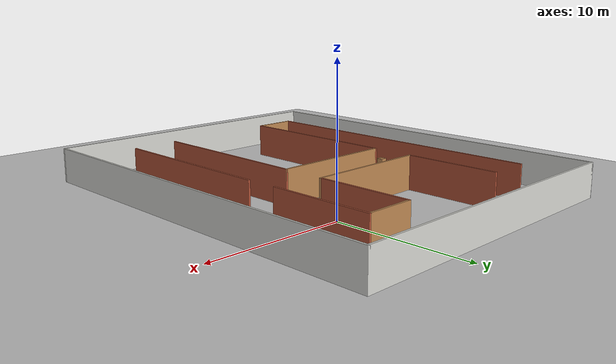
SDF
<sdf version='1.6'>
  <world name='default'>
    <model name='ground_plane'>
      <static>1</static>
      <link name='link'>
        <collision name='collision'>
          <geometry>
            <plane>
              <normal>0 0 1</normal>
              <size>100 100</size>
            </plane>
          </geometry>
          <surface>
            <friction>
              <ode>
                <mu>100</mu>
                <mu2>50</mu2>
              </ode>
              <torsional>
                <ode/>
              </torsional>
            </friction>
            <contact>
              <ode/>
            </contact>
            <bounce/>
          </surface>
          <max_contacts>10</max_contacts>
        </collision>
        <visual name='visual'>
          <cast_shadows>0</cast_shadows>
          <geometry>
            <plane>
              <normal>0 0 1</normal>
              <size>100 100</size>
            </plane>
          </geometry>
          <material>
            <script>
              <uri>file://media/materials/scripts/gazebo.material</uri>
              <name>Gazebo/Tertiary</name>
            </script>
          </material>
        </visual>
        <self_collide>0</self_collide>
        <enable_wind>0</enable_wind>
        <kinematic>0</kinematic>
      </link>
    </model>
    <light name='sun' type='directional'>
      <cast_shadows>1</cast_shadows>
      <pose frame=''>0 0 10 0 -0 0</pose>
      <diffuse>0.8 0.8 0.8 1</diffuse>
      <specular>0.2 0.2 0.2 1</specular>
      <attenuation>
        <range>1000</range>
        <constant>0.9</constant>
        <linear>0.01</linear>
        <quadratic>0.001</quadratic>
      </attenuation>
      <direction>-0.5 0.1 -0.9</direction>
    </light>
    <gravity>0 0 -9.8</gravity>
    <magnetic_field>6e-06 2.3e-05 -4.2e-05</magnetic_field>
    <atmosphere type='adiabatic'/>
    <physics name='default_physics' default='0' type='ode'>
      <max_step_size>0.001</max_step_size>
      <real_time_factor>1</real_time_factor>
      <real_time_update_rate>1000</real_time_update_rate>
    </physics>
    <scene>
      <ambient>0.4 0.4 0.4 1</ambient>
      <background>0.7 0.7 0.7 1</background>
      <shadows>1</shadows>
    </scene>
    <audio>
      <device>default</device>
    </audio>
    <wind/>
    <spherical_coordinates>
      <surface_model>EARTH_WGS84</surface_model>
      <latitude_deg>0</latitude_deg>
      <longitude_deg>0</longitude_deg>
      <elevation>0</elevation>
      <heading_deg>0</heading_deg>
    </spherical_coordinates>
    <gui fullscreen='0'>
      <camera name='user_camera'>
        <pose frame=''>-0.65607 -16.5561 27.0878 0 1.1178 1.88717</pose>
        <view_controller>orbit</view_controller>
        <projection_type>perspective</projection_type>
      </camera>
    </gui>
    <model name='H_shaped_course'>
      <pose frame=''>-4.38852 -5.95909 0 0 -0 0</pose>
      <link name='Wall_10'>
        <collision name='Wall_10_Collision'>
          <geometry>
            <box>
              <size>12.75 0.15 2.5</size>
            </box>
          </geometry>
          <pose frame=''>0 0 1.25 0 -0 0</pose>
          <max_contacts>10</max_contacts>
          <surface>
            <contact>
              <ode/>
            </contact>
            <bounce/>
            <friction>
              <torsional>
                <ode/>
              </torsional>
              <ode/>
            </friction>
          </surface>
        </collision>
        <visual name='Wall_10_Visual'>
          <pose frame=''>0 0 1.25 0 -0 0</pose>
          <geometry>
            <box>
              <size>12.75 0.15 2.5</size>
            </box>
          </geometry>
          <material>
            <script>
              <uri>file://media/materials/scripts/gazebo.material</uri>
              <name>Gazebo/Bricks</name>
            </script>
            <ambient>1 1 1 1</ambient>
          </material>
          <meta>
            <layer>0</layer>
          </meta>
        </visual>
        <pose frame=''>-4.52948 -4.89593 0 0 -0 1.5708</pose>
        <self_collide>0</self_collide>
        <enable_wind>0</enable_wind>
        <kinematic>0</kinematic>
      </link>
      <link name='Wall_11'>
        <collision name='Wall_11_Collision'>
          <geometry>
            <box>
              <size>9 0.15 2.5</size>
            </box>
          </geometry>
          <pose frame=''>0 0 1.25 0 -0 0</pose>
          <max_contacts>10</max_contacts>
          <surface>
            <contact>
              <ode/>
            </contact>
            <bounce/>
            <friction>
              <torsional>
                <ode/>
              </torsional>
              <ode/>
            </friction>
          </surface>
        </collision>
        <visual name='Wall_11_Visual'>
          <pose frame=''>0 0 1.25 0 -0 0</pose>
          <geometry>
            <box>
              <size>9 0.15 2.5</size>
            </box>
          </geometry>
          <material>
            <script>
              <uri>file://media/materials/scripts/gazebo.material</uri>
              <name>Gazebo/Wood</name>
            </script>
            <ambient>1 1 1 1</ambient>
          </material>
          <meta>
            <layer>0</layer>
          </meta>
        </visual>
        <pose frame=''>-0.104482 1.40407 0 0 -0 0</pose>
        <self_collide>0</self_collide>
        <enable_wind>0</enable_wind>
        <kinematic>0</kinematic>
      </link>
      <link name='Wall_12'>
        <collision name='Wall_12_Collision'>
          <geometry>
            <box>
              <size>12.5 0.15 2.5</size>
            </box>
          </geometry>
          <pose frame=''>0 0 1.25 0 -0 0</pose>
          <max_contacts>10</max_contacts>
          <surface>
            <contact>
              <ode/>
            </contact>
            <bounce/>
            <friction>
              <torsional>
                <ode/>
              </torsional>
              <ode/>
            </friction>
          </surface>
        </collision>
        <visual name='Wall_12_Visual'>
          <pose frame=''>0 0 1.25 0 -0 0</pose>
          <geometry>
            <box>
              <size>12.5 0.15 2.5</size>
            </box>
          </geometry>
          <material>
            <script>
              <uri>file://media/materials/scripts/gazebo.material</uri>
              <name>Gazebo/Bricks</name>
            </script>
            <ambient>1 1 1 1</ambient>
          </material>
          <meta>
            <layer>0</layer>
          </meta>
        </visual>
        <pose frame=''>4.32052 -4.77093 0 0 -0 -1.5708</pose>
        <self_collide>0</self_collide>
        <enable_wind>0</enable_wind>
        <kinematic>0</kinematic>
      </link>
      <link name='Wall_17'>
        <collision name='Wall_17_Collision'>
          <geometry>
            <box>
              <size>23 0.15 2.5</size>
            </box>
          </geometry>
          <pose frame=''>0 0 1.25 0 -0 0</pose>
          <max_contacts>10</max_contacts>
          <surface>
            <contact>
              <ode/>
            </contact>
            <bounce/>
            <friction>
              <torsional>
                <ode/>
              </torsional>
              <ode/>
            </friction>
          </surface>
        </collision>
        <visual name='Wall_17_Visual'>
          <pose frame=''>0 0 1.25 0 -0 0</pose>
          <geometry>
            <box>
              <size>23 0.15 2.5</size>
            </box>
          </geometry>
          <material>
            <script>
              <uri>file://media/materials/scripts/gazebo.material</uri>
              <name>Gazebo/CeilingTiled</name>
            </script>
            <ambient>1 1 1 1</ambient>
          </material>
          <meta>
            <layer>0</layer>
          </meta>
        </visual>
        <pose frame=''>-0 14.55 0 0 -0 0</pose>
        <self_collide>0</self_collide>
        <enable_wind>0</enable_wind>
        <kinematic>0</kinematic>
      </link>
      <link name='Wall_18'>
        <collision name='Wall_18_Collision'>
          <geometry>
            <box>
              <size>29.25 0.15 2.5</size>
            </box>
          </geometry>
          <pose frame=''>0 0 1.25 0 -0 0</pose>
          <max_contacts>10</max_contacts>
          <surface>
            <contact>
              <ode/>
            </contact>
            <bounce/>
            <friction>
              <torsional>
                <ode/>
              </torsional>
              <ode/>
            </friction>
          </surface>
        </collision>
        <visual name='Wall_18_Visual'>
          <pose frame=''>0 0 1.25 0 -0 0</pose>
          <geometry>
            <box>
              <size>29.25 0.15 2.5</size>
            </box>
          </geometry>
          <material>
            <script>
              <uri>file://media/materials/scripts/gazebo.material</uri>
              <name>Gazebo/CeilingTiled</name>
            </script>
            <ambient>1 1 1 1</ambient>
          </material>
          <meta>
            <layer>0</layer>
          </meta>
        </visual>
        <pose frame=''>11.425 0 0 0 -0 -1.5708</pose>
        <self_collide>0</self_collide>
        <enable_wind>0</enable_wind>
        <kinematic>0</kinematic>
      </link>
      <link name='Wall_19'>
        <collision name='Wall_19_Collision'>
          <geometry>
            <box>
              <size>23 0.15 2.5</size>
            </box>
          </geometry>
          <pose frame=''>0 0 1.25 0 -0 0</pose>
          <max_contacts>10</max_contacts>
          <surface>
            <contact>
              <ode/>
            </contact>
            <bounce/>
            <friction>
              <torsional>
                <ode/>
              </torsional>
              <ode/>
            </friction>
          </surface>
        </collision>
        <visual name='Wall_19_Visual'>
          <pose frame=''>0 0 1.25 0 -0 0</pose>
          <geometry>
            <box>
              <size>23 0.15 2.5</size>
            </box>
          </geometry>
          <material>
            <script>
              <uri>file://media/materials/scripts/gazebo.material</uri>
              <name>Gazebo/CeilingTiled</name>
            </script>
            <ambient>1 1 1 1</ambient>
          </material>
          <meta>
            <layer>0</layer>
          </meta>
        </visual>
        <pose frame=''>-0 -14.55 0 0 -0 3.14159</pose>
        <self_collide>0</self_collide>
        <enable_wind>0</enable_wind>
        <kinematic>0</kinematic>
      </link>
      <link name='Wall_20'>
        <collision name='Wall_20_Collision'>
          <geometry>
            <box>
              <size>29.25 0.15 2.5</size>
            </box>
          </geometry>
          <pose frame=''>0 0 1.25 0 -0 0</pose>
          <max_contacts>10</max_contacts>
          <surface>
            <contact>
              <ode/>
            </contact>
            <bounce/>
            <friction>
              <torsional>
                <ode/>
              </torsional>
              <ode/>
            </friction>
          </surface>
        </collision>
        <visual name='Wall_20_Visual'>
          <pose frame=''>0 0 1.25 0 -0 0</pose>
          <geometry>
            <box>
              <size>29.25 0.15 2.5</size>
            </box>
          </geometry>
          <material>
            <script>
              <uri>file://media/materials/scripts/gazebo.material</uri>
              <name>Gazebo/CeilingTiled</name>
            </script>
            <ambient>1 1 1 1</ambient>
          </material>
          <meta>
            <layer>0</layer>
          </meta>
        </visual>
        <pose frame=''>-11.425 0 0 0 -0 1.5708</pose>
        <self_collide>0</self_collide>
        <enable_wind>0</enable_wind>
        <kinematic>0</kinematic>
      </link>
      <link name='Wall_22'>
        <collision name='Wall_22_Collision'>
          <geometry>
            <box>
              <size>7.5 0.15 2.5</size>
            </box>
          </geometry>
          <pose frame=''>0 0 1.25 0 -0 0</pose>
          <max_contacts>10</max_contacts>
          <surface>
            <contact>
              <ode/>
            </contact>
            <bounce/>
            <friction>
              <torsional>
                <ode/>
              </torsional>
              <ode/>
            </friction>
          </surface>
        </collision>
        <visual name='Wall_22_Visual'>
          <pose frame=''>0 0 1.25 0 -0 0</pose>
          <geometry>
            <box>
              <size>7.5 0.15 2.5</size>
            </box>
          </geometry>
          <material>
            <script>
              <uri>file://media/materials/scripts/gazebo.material</uri>
              <name>Gazebo/Bricks</name>
            </script>
            <ambient>1 1 1 1</ambient>
          </material>
          <meta>
            <layer>0</layer>
          </meta>
        </visual>
        <pose frame=''>7.71017 7.73708 0 0 -0 -1.5708</pose>
        <self_collide>0</self_collide>
        <enable_wind>0</enable_wind>
        <kinematic>0</kinematic>
      </link>
      <link name='Wall_24'>
        <collision name='Wall_24_Collision'>
          <geometry>
            <box>
              <size>12.75 0.15 2.5</size>
            </box>
          </geometry>
          <pose frame=''>0 0 1.25 0 -0 0</pose>
          <max_contacts>10</max_contacts>
          <surface>
            <contact>
              <ode/>
            </contact>
            <bounce/>
            <friction>
              <torsional>
                <ode/>
              </torsional>
              <ode/>
            </friction>
          </surface>
        </collision>
        <visual name='Wall_24_Visual'>
          <pose frame=''>0 0 1.25 0 -0 0</pose>
          <geometry>
            <box>
              <size>12.75 0.15 2.5</size>
            </box>
          </geometry>
          <material>
            <script>
              <uri>file://media/materials/scripts/gazebo.material</uri>
              <name>Gazebo/Bricks</name>
            </script>
            <ambient>1 1 1 1</ambient>
          </material>
          <meta>
            <layer>0</layer>
          </meta>
        </visual>
        <pose frame=''>7.7717 -4.56101 0 0 -0 1.5708</pose>
        <self_collide>0</self_collide>
        <enable_wind>0</enable_wind>
        <kinematic>0</kinematic>
      </link>
      <link name='Wall_3'>
        <collision name='Wall_3_Collision'>
          <geometry>
            <box>
              <size>3.5 0.15 2.5</size>
            </box>
          </geometry>
          <pose frame=''>0 0 1.25 0 -0 0</pose>
          <max_contacts>10</max_contacts>
          <surface>
            <contact>
              <ode/>
            </contact>
            <bounce/>
            <friction>
              <torsional>
                <ode/>
              </torsional>
              <ode/>
            </friction>
          </surface>
        </collision>
        <visual name='Wall_3_Visual'>
          <pose frame=''>0 0 1.25 0 -0 0</pose>
          <geometry>
            <box>
              <size>3.5 0.15 2.5</size>
            </box>
          </geometry>
          <material>
            <script>
              <uri>file://media/materials/scripts/gazebo.material</uri>
              <name>Gazebo/Wood</name>
            </script>
            <ambient>1 1 1 1</ambient>
          </material>
          <meta>
            <layer>0</layer>
          </meta>
        </visual>
        <pose frame=''>5.99552 11.4041 0 0 -0 3.14159</pose>
        <self_collide>0</self_collide>
        <enable_wind>0</enable_wind>
        <kinematic>0</kinematic>
      </link>
      <link name='Wall_4'>
        <collision name='Wall_4_Collision'>
          <geometry>
            <box>
              <size>7 0.15 2.5</size>
            </box>
          </geometry>
          <pose frame=''>0 0 1.25 0 -0 0</pose>
          <max_contacts>10</max_contacts>
          <surface>
            <contact>
              <ode/>
            </contact>
            <bounce/>
            <friction>
              <torsional>
                <ode/>
              </torsional>
              <ode/>
            </friction>
          </surface>
        </collision>
        <visual name='Wall_4_Visual'>
          <pose frame=''>0 0 1.25 0 -0 0</pose>
          <geometry>
            <box>
              <size>7 0.15 2.5</size>
            </box>
          </geometry>
          <material>
            <script>
              <uri>file://media/materials/scripts/gazebo.material</uri>
              <name>Gazebo/Bricks</name>
            </script>
            <ambient>1 1 1 1</ambient>
          </material>
          <meta>
            <layer>0</layer>
          </meta>
        </visual>
        <pose frame=''>4.32052 7.97907 0 0 -0 -1.5708</pose>
        <self_collide>0</self_collide>
        <enable_wind>0</enable_wind>
        <kinematic>0</kinematic>
      </link>
      <link name='Wall_5'>
        <collision name='Wall_5_Collision'>
          <geometry>
            <box>
              <size>9 0.15 2.5</size>
            </box>
          </geometry>
          <pose frame=''>0 0 1.25 0 -0 0</pose>
          <max_contacts>10</max_contacts>
          <surface>
            <contact>
              <ode/>
            </contact>
            <bounce/>
            <friction>
              <torsional>
                <ode/>
              </torsional>
              <ode/>
            </friction>
          </surface>
        </collision>
        <visual name='Wall_5_Visual'>
          <pose frame=''>0 0 1.25 0 -0 0</pose>
          <geometry>
            <box>
              <size>9 0.15 2.5</size>
            </box>
          </geometry>
          <material>
            <script>
              <uri>file://media/materials/scripts/gazebo.material</uri>
              <name>Gazebo/Wood</name>
            </script>
            <ambient>1 1 1 1</ambient>
          </material>
          <meta>
            <layer>0</layer>
          </meta>
        </visual>
        <pose frame=''>-0.104482 4.55407 0 0 -0 3.14159</pose>
        <self_collide>0</self_collide>
        <enable_wind>0</enable_wind>
        <kinematic>0</kinematic>
      </link>
      <link name='Wall_6'>
        <collision name='Wall_6_Collision'>
          <geometry>
            <box>
              <size>7 0.15 2.5</size>
            </box>
          </geometry>
          <pose frame=''>0 0 1.25 0 -0 0</pose>
          <max_contacts>10</max_contacts>
          <surface>
            <contact>
              <ode/>
            </contact>
            <bounce/>
            <friction>
              <torsional>
                <ode/>
              </torsional>
              <ode/>
            </friction>
          </surface>
        </collision>
        <visual name='Wall_6_Visual'>
          <pose frame=''>0 0 1.25 0 -0 0</pose>
          <geometry>
            <box>
              <size>7 0.15 2.5</size>
            </box>
          </geometry>
          <material>
            <script>
              <uri>file://media/materials/scripts/gazebo.material</uri>
              <name>Gazebo/Bricks</name>
            </script>
            <ambient>1 1 1 1</ambient>
          </material>
          <meta>
            <layer>0</layer>
          </meta>
        </visual>
        <pose frame=''>-4.52948 7.97907 0 0 -0 1.5708</pose>
        <self_collide>0</self_collide>
        <enable_wind>0</enable_wind>
        <kinematic>0</kinematic>
      </link>
      <link name='Wall_8'>
        <collision name='Wall_8_Collision'>
          <geometry>
            <box>
              <size>22.75 0.15 2.5</size>
            </box>
          </geometry>
          <pose frame=''>0 0 1.25 0 -0 0</pose>
          <max_contacts>10</max_contacts>
          <surface>
            <contact>
              <ode/>
            </contact>
            <bounce/>
            <friction>
              <torsional>
                <ode/>
              </torsional>
              <ode/>
            </friction>
          </surface>
        </collision>
        <visual name='Wall_8_Visual'>
          <pose frame=''>0 0 1.25 0 -0 0</pose>
          <geometry>
            <box>
              <size>22.75 0.15 2.5</size>
            </box>
          </geometry>
          <material>
            <script>
              <uri>file://media/materials/scripts/gazebo.material</uri>
              <name>Gazebo/Bricks</name>
            </script>
            <ambient>1 1 1 1</ambient>
          </material>
          <meta>
            <layer>0</layer>
          </meta>
        </visual>
        <pose frame=''>-7.62948 0.104067 0 0 -0 -1.5708</pose>
        <self_collide>0</self_collide>
        <enable_wind>0</enable_wind>
        <kinematic>0</kinematic>
      </link>
      <link name='Wall_9'>
        <collision name='Wall_9_Collision'>
          <geometry>
            <box>
              <size>3.25 0.15 2.5</size>
            </box>
          </geometry>
          <pose frame=''>0 0 1.25 0 -0 0</pose>
          <max_contacts>10</max_contacts>
          <surface>
            <contact>
              <ode/>
            </contact>
            <bounce/>
            <friction>
              <torsional>
                <ode/>
              </torsional>
              <ode/>
            </friction>
          </surface>
        </collision>
        <visual name='Wall_9_Visual'>
          <pose frame=''>0 0 1.25 0 -0 0</pose>
          <geometry>
            <box>
              <size>3.25 0.15 2.5</size>
            </box>
          </geometry>
          <material>
            <script>
              <uri>file://media/materials/scripts/gazebo.material</uri>
              <name>Gazebo/Wood</name>
            </script>
            <ambient>1 1 1 1</ambient>
          </material>
          <meta>
            <layer>0</layer>
          </meta>
        </visual>
        <pose frame=''>-6.07948 -11.1959 0 0 -0 0</pose>
        <self_collide>0</self_collide>
        <enable_wind>0</enable_wind>
        <kinematic>0</kinematic>
      </link>
      <static>1</static>
    </model>
    <model name='bookshelf'>
      <static>1</static>
      <link name='link'>
        <inertial>
          <mass>1</mass>
        </inertial>
        <collision name='back'>
          <pose frame=''>0 0.005 0.6 0 -0 0</pose>
          <geometry>
            <box>
              <size>0.9 0.01 1.2</size>
            </box>
          </geometry>
          <max_contacts>10</max_contacts>
          <surface>
            <contact>
              <ode/>
            </contact>
            <bounce/>
            <friction>
              <torsional>
                <ode/>
              </torsional>
              <ode/>
            </friction>
          </surface>
        </collision>
        <visual name='visual1'>
          <pose frame=''>0 0.005 0.6 0 -0 0</pose>
          <geometry>
            <box>
              <size>0.9 0.01 1.2</size>
            </box>
          </geometry>
          <material>
            <script>
              <uri>file://media/materials/scripts/gazebo.material</uri>
              <name>Gazebo/Wood</name>
            </script>
          </material>
        </visual>
        <collision name='left_side'>
          <pose frame=''>0.45 -0.195 0.6 0 -0 0</pose>
          <geometry>
            <box>
              <size>0.02 0.4 1.2</size>
            </box>
          </geometry>
          <max_contacts>10</max_contacts>
          <surface>
            <contact>
              <ode/>
            </contact>
            <bounce/>
            <friction>
              <torsional>
                <ode/>
              </torsional>
              <ode/>
            </friction>
          </surface>
        </collision>
        <visual name='visual2'>
          <pose frame=''>0.45 -0.195 0.6 0 -0 0</pose>
          <geometry>
            <box>
              <size>0.02 0.4 1.2</size>
            </box>
          </geometry>
          <material>
            <script>
              <uri>file://media/materials/scripts/gazebo.material</uri>
              <name>Gazebo/Wood</name>
            </script>
          </material>
        </visual>
        <collision name='right_side'>
          <pose frame=''>-0.45 -0.195 0.6 0 -0 0</pose>
          <geometry>
            <box>
              <size>0.02 0.4 1.2</size>
            </box>
          </geometry>
          <max_contacts>10</max_contacts>
          <surface>
            <contact>
              <ode/>
            </contact>
            <bounce/>
            <friction>
              <torsional>
                <ode/>
              </torsional>
              <ode/>
            </friction>
          </surface>
        </collision>
        <visual name='visual3'>
          <pose frame=''>-0.45 -0.195 0.6 0 -0 0</pose>
          <geometry>
            <box>
              <size>0.02 0.4 1.2</size>
            </box>
          </geometry>
          <material>
            <script>
              <uri>file://media/materials/scripts/gazebo.material</uri>
              <name>Gazebo/Wood</name>
            </script>
          </material>
        </visual>
        <collision name='bottom'>
          <pose frame=''>0 -0.195 0.03 0 -0 0</pose>
          <geometry>
            <box>
              <size>0.88 0.4 0.06</size>
            </box>
          </geometry>
          <max_contacts>10</max_contacts>
          <surface>
            <contact>
              <ode/>
            </contact>
            <bounce/>
            <friction>
              <torsional>
                <ode/>
              </torsional>
              <ode/>
            </friction>
          </surface>
        </collision>
        <visual name='visual4'>
          <pose frame=''>0 -0.195 0.03 0 -0 0</pose>
          <geometry>
            <box>
              <size>0.88 0.4 0.06</size>
            </box>
          </geometry>
          <material>
            <script>
              <uri>file://media/materials/scripts/gazebo.material</uri>
              <name>Gazebo/Wood</name>
            </script>
          </material>
        </visual>
        <collision name='top'>
          <pose frame=''>0 -0.195 1.19 0 -0 0</pose>
          <geometry>
            <box>
              <size>0.88 0.4 0.02</size>
            </box>
          </geometry>
          <max_contacts>10</max_contacts>
          <surface>
            <contact>
              <ode/>
            </contact>
            <bounce/>
            <friction>
              <torsional>
                <ode/>
              </torsional>
              <ode/>
            </friction>
          </surface>
        </collision>
        <visual name='visual5'>
          <pose frame=''>0 -0.195 1.19 0 -0 0</pose>
          <geometry>
            <box>
              <size>0.88 0.4 0.02</size>
            </box>
          </geometry>
          <material>
            <script>
              <uri>file://media/materials/scripts/gazebo.material</uri>
              <name>Gazebo/Wood</name>
            </script>
          </material>
        </visual>
        <collision name='low_shelf'>
          <pose frame=''>0 -0.195 0.43 0 -0 0</pose>
          <geometry>
            <box>
              <size>0.88 0.4 0.02</size>
            </box>
          </geometry>
          <max_contacts>10</max_contacts>
          <surface>
            <contact>
              <ode/>
            </contact>
            <bounce/>
            <friction>
              <torsional>
                <ode/>
              </torsional>
              <ode/>
            </friction>
          </surface>
        </collision>
        <visual name='visual6'>
          <pose frame=''>0 -0.195 0.43 0 -0 0</pose>
          <geometry>
            <box>
              <size>0.88 0.4 0.02</size>
            </box>
          </geometry>
          <material>
            <script>
              <uri>file://media/materials/scripts/gazebo.material</uri>
              <name>Gazebo/Wood</name>
            </script>
          </material>
        </visual>
        <collision name='high_shelf'>
          <pose frame=''>0 -0.195 0.8 0 -0 0</pose>
          <geometry>
            <box>
              <size>0.88 0.4 0.02</size>
            </box>
          </geometry>
          <max_contacts>10</max_contacts>
          <surface>
            <contact>
              <ode/>
            </contact>
            <bounce/>
            <friction>
              <torsional>
                <ode/>
              </torsional>
              <ode/>
            </friction>
          </surface>
        </collision>
        <visual name='visual7'>
          <pose frame=''>0 -0.195 0.8 0 -0 0</pose>
          <geometry>
            <box>
              <size>0.88 0.4 0.02</size>
            </box>
          </geometry>
          <material>
            <script>
              <uri>file://media/materials/scripts/gazebo.material</uri>
              <name>Gazebo/Wood</name>
            </script>
          </material>
        </visual>
        <self_collide>0</self_collide>
        <enable_wind>0</enable_wind>
        <kinematic>0</kinematic>
      </link>
      <pose frame=''>-11.9058 1.66068 0 0 -0 1.584</pose>
    </model>
    <model name='bookshelf_1'>
      <static>1</static>
      <link name='link'>
        <inertial>
          <mass>1</mass>
        </inertial>
        <collision name='back'>
          <pose frame=''>0 0.005 0.6 0 -0 0</pose>
          <geometry>
            <box>
              <size>0.9 0.01 1.2</size>
            </box>
          </geometry>
          <max_contacts>10</max_contacts>
          <surface>
            <contact>
              <ode/>
            </contact>
            <bounce/>
            <friction>
              <torsional>
                <ode/>
              </torsional>
              <ode/>
            </friction>
          </surface>
        </collision>
        <visual name='visual1'>
          <pose frame=''>0 0.005 0.6 0 -0 0</pose>
          <geometry>
            <box>
              <size>0.9 0.01 1.2</size>
            </box>
          </geometry>
          <material>
            <script>
              <uri>file://media/materials/scripts/gazebo.material</uri>
              <name>Gazebo/Wood</name>
            </script>
          </material>
        </visual>
        <collision name='left_side'>
          <pose frame=''>0.45 -0.195 0.6 0 -0 0</pose>
          <geometry>
            <box>
              <size>0.02 0.4 1.2</size>
            </box>
          </geometry>
          <max_contacts>10</max_contacts>
          <surface>
            <contact>
              <ode/>
            </contact>
            <bounce/>
            <friction>
              <torsional>
                <ode/>
              </torsional>
              <ode/>
            </friction>
          </surface>
        </collision>
        <visual name='visual2'>
          <pose frame=''>0.45 -0.195 0.6 0 -0 0</pose>
          <geometry>
            <box>
              <size>0.02 0.4 1.2</size>
            </box>
          </geometry>
          <material>
            <script>
              <uri>file://media/materials/scripts/gazebo.material</uri>
              <name>Gazebo/Wood</name>
            </script>
          </material>
        </visual>
        <collision name='right_side'>
          <pose frame=''>-0.45 -0.195 0.6 0 -0 0</pose>
          <geometry>
            <box>
              <size>0.02 0.4 1.2</size>
            </box>
          </geometry>
          <max_contacts>10</max_contacts>
          <surface>
            <contact>
              <ode/>
            </contact>
            <bounce/>
            <friction>
              <torsional>
                <ode/>
              </torsional>
              <ode/>
            </friction>
          </surface>
        </collision>
        <visual name='visual3'>
          <pose frame=''>-0.45 -0.195 0.6 0 -0 0</pose>
          <geometry>
            <box>
              <size>0.02 0.4 1.2</size>
            </box>
          </geometry>
          <material>
            <script>
              <uri>file://media/materials/scripts/gazebo.material</uri>
              <name>Gazebo/Wood</name>
            </script>
          </material>
        </visual>
        <collision name='bottom'>
          <pose frame=''>0 -0.195 0.03 0 -0 0</pose>
          <geometry>
            <box>
              <size>0.88 0.4 0.06</size>
            </box>
          </geometry>
          <max_contacts>10</max_contacts>
          <surface>
            <contact>
              <ode/>
            </contact>
            <bounce/>
            <friction>
              <torsional>
                <ode/>
              </torsional>
              <ode/>
            </friction>
          </surface>
        </collision>
        <visual name='visual4'>
          <pose frame=''>0 -0.195 0.03 0 -0 0</pose>
          <geometry>
            <box>
              <size>0.88 0.4 0.06</size>
            </box>
          </geometry>
          <material>
            <script>
              <uri>file://media/materials/scripts/gazebo.material</uri>
              <name>Gazebo/Wood</name>
            </script>
          </material>
        </visual>
        <collision name='top'>
          <pose frame=''>0 -0.195 1.19 0 -0 0</pose>
          <geometry>
            <box>
              <size>0.88 0.4 0.02</size>
            </box>
          </geometry>
          <max_contacts>10</max_contacts>
          <surface>
            <contact>
              <ode/>
            </contact>
            <bounce/>
            <friction>
              <torsional>
                <ode/>
              </torsional>
              <ode/>
            </friction>
          </surface>
        </collision>
        <visual name='visual5'>
          <pose frame=''>0 -0.195 1.19 0 -0 0</pose>
          <geometry>
            <box>
              <size>0.88 0.4 0.02</size>
            </box>
          </geometry>
          <material>
            <script>
              <uri>file://media/materials/scripts/gazebo.material</uri>
              <name>Gazebo/Wood</name>
            </script>
          </material>
        </visual>
        <collision name='low_shelf'>
          <pose frame=''>0 -0.195 0.43 0 -0 0</pose>
          <geometry>
            <box>
              <size>0.88 0.4 0.02</size>
            </box>
          </geometry>
          <max_contacts>10</max_contacts>
          <surface>
            <contact>
              <ode/>
            </contact>
            <bounce/>
            <friction>
              <torsional>
                <ode/>
              </torsional>
              <ode/>
            </friction>
          </surface>
        </collision>
        <visual name='visual6'>
          <pose frame=''>0 -0.195 0.43 0 -0 0</pose>
          <geometry>
            <box>
              <size>0.88 0.4 0.02</size>
            </box>
          </geometry>
          <material>
            <script>
              <uri>file://media/materials/scripts/gazebo.material</uri>
              <name>Gazebo/Wood</name>
            </script>
          </material>
        </visual>
        <collision name='high_shelf'>
          <pose frame=''>0 -0.195 0.8 0 -0 0</pose>
          <geometry>
            <box>
              <size>0.88 0.4 0.02</size>
            </box>
          </geometry>
          <max_contacts>10</max_contacts>
          <surface>
            <contact>
              <ode/>
            </contact>
            <bounce/>
            <friction>
              <torsional>
                <ode/>
              </torsional>
              <ode/>
            </friction>
          </surface>
        </collision>
        <visual name='visual7'>
          <pose frame=''>0 -0.195 0.8 0 -0 0</pose>
          <geometry>
            <box>
              <size>0.88 0.4 0.02</size>
            </box>
          </geometry>
          <material>
            <script>
              <uri>file://media/materials/scripts/gazebo.material</uri>
              <name>Gazebo/Wood</name>
            </script>
          </material>
        </visual>
        <self_collide>0</self_collide>
        <enable_wind>0</enable_wind>
        <kinematic>0</kinematic>
      </link>
      <pose frame=''>0.089092 -0.777175 0 0 -0 1.61239</pose>
    </model>
    <model name='bookshelf_2'>
      <static>1</static>
      <link name='link'>
        <inertial>
          <mass>1</mass>
        </inertial>
        <collision name='back'>
          <pose frame=''>0 0.005 0.6 0 -0 0</pose>
          <geometry>
            <box>
              <size>0.9 0.01 1.2</size>
            </box>
          </geometry>
          <max_contacts>10</max_contacts>
          <surface>
            <contact>
              <ode/>
            </contact>
            <bounce/>
            <friction>
              <torsional>
                <ode/>
              </torsional>
              <ode/>
            </friction>
          </surface>
        </collision>
        <visual name='visual1'>
          <pose frame=''>0 0.005 0.6 0 -0 0</pose>
          <geometry>
            <box>
              <size>0.9 0.01 1.2</size>
            </box>
          </geometry>
          <material>
            <script>
              <uri>file://media/materials/scripts/gazebo.material</uri>
              <name>Gazebo/Wood</name>
            </script>
          </material>
        </visual>
        <collision name='left_side'>
          <pose frame=''>0.45 -0.195 0.6 0 -0 0</pose>
          <geometry>
            <box>
              <size>0.02 0.4 1.2</size>
            </box>
          </geometry>
          <max_contacts>10</max_contacts>
          <surface>
            <contact>
              <ode/>
            </contact>
            <bounce/>
            <friction>
              <torsional>
                <ode/>
              </torsional>
              <ode/>
            </friction>
          </surface>
        </collision>
        <visual name='visual2'>
          <pose frame=''>0.45 -0.195 0.6 0 -0 0</pose>
          <geometry>
            <box>
              <size>0.02 0.4 1.2</size>
            </box>
          </geometry>
          <material>
            <script>
              <uri>file://media/materials/scripts/gazebo.material</uri>
              <name>Gazebo/Wood</name>
            </script>
          </material>
        </visual>
        <collision name='right_side'>
          <pose frame=''>-0.45 -0.195 0.6 0 -0 0</pose>
          <geometry>
            <box>
              <size>0.02 0.4 1.2</size>
            </box>
          </geometry>
          <max_contacts>10</max_contacts>
          <surface>
            <contact>
              <ode/>
            </contact>
            <bounce/>
            <friction>
              <torsional>
                <ode/>
              </torsional>
              <ode/>
            </friction>
          </surface>
        </collision>
        <visual name='visual3'>
          <pose frame=''>-0.45 -0.195 0.6 0 -0 0</pose>
          <geometry>
            <box>
              <size>0.02 0.4 1.2</size>
            </box>
          </geometry>
          <material>
            <script>
              <uri>file://media/materials/scripts/gazebo.material</uri>
              <name>Gazebo/Wood</name>
            </script>
          </material>
        </visual>
        <collision name='bottom'>
          <pose frame=''>0 -0.195 0.03 0 -0 0</pose>
          <geometry>
            <box>
              <size>0.88 0.4 0.06</size>
            </box>
          </geometry>
          <max_contacts>10</max_contacts>
          <surface>
            <contact>
              <ode/>
            </contact>
            <bounce/>
            <friction>
              <torsional>
                <ode/>
              </torsional>
              <ode/>
            </friction>
          </surface>
        </collision>
        <visual name='visual4'>
          <pose frame=''>0 -0.195 0.03 0 -0 0</pose>
          <geometry>
            <box>
              <size>0.88 0.4 0.06</size>
            </box>
          </geometry>
          <material>
            <script>
              <uri>file://media/materials/scripts/gazebo.material</uri>
              <name>Gazebo/Wood</name>
            </script>
          </material>
        </visual>
        <collision name='top'>
          <pose frame=''>0 -0.195 1.19 0 -0 0</pose>
          <geometry>
            <box>
              <size>0.88 0.4 0.02</size>
            </box>
          </geometry>
          <max_contacts>10</max_contacts>
          <surface>
            <contact>
              <ode/>
            </contact>
            <bounce/>
            <friction>
              <torsional>
                <ode/>
              </torsional>
              <ode/>
            </friction>
          </surface>
        </collision>
        <visual name='visual5'>
          <pose frame=''>0 -0.195 1.19 0 -0 0</pose>
          <geometry>
            <box>
              <size>0.88 0.4 0.02</size>
            </box>
          </geometry>
          <material>
            <script>
              <uri>file://media/materials/scripts/gazebo.material</uri>
              <name>Gazebo/Wood</name>
            </script>
          </material>
        </visual>
        <collision name='low_shelf'>
          <pose frame=''>0 -0.195 0.43 0 -0 0</pose>
          <geometry>
            <box>
              <size>0.88 0.4 0.02</size>
            </box>
          </geometry>
          <max_contacts>10</max_contacts>
          <surface>
            <contact>
              <ode/>
            </contact>
            <bounce/>
            <friction>
              <torsional>
                <ode/>
              </torsional>
              <ode/>
            </friction>
          </surface>
        </collision>
        <visual name='visual6'>
          <pose frame=''>0 -0.195 0.43 0 -0 0</pose>
          <geometry>
            <box>
              <size>0.88 0.4 0.02</size>
            </box>
          </geometry>
          <material>
            <script>
              <uri>file://media/materials/scripts/gazebo.material</uri>
              <name>Gazebo/Wood</name>
            </script>
          </material>
        </visual>
        <collision name='high_shelf'>
          <pose frame=''>0 -0.195 0.8 0 -0 0</pose>
          <geometry>
            <box>
              <size>0.88 0.4 0.02</size>
            </box>
          </geometry>
          <max_contacts>10</max_contacts>
          <surface>
            <contact>
              <ode/>
            </contact>
            <bounce/>
            <friction>
              <torsional>
                <ode/>
              </torsional>
              <ode/>
            </friction>
          </surface>
        </collision>
        <visual name='visual7'>
          <pose frame=''>0 -0.195 0.8 0 -0 0</pose>
          <geometry>
            <box>
              <size>0.88 0.4 0.02</size>
            </box>
          </geometry>
          <material>
            <script>
              <uri>file://media/materials/scripts/gazebo.material</uri>
              <name>Gazebo/Wood</name>
            </script>
          </material>
        </visual>
        <self_collide>0</self_collide>
        <enable_wind>0</enable_wind>
        <kinematic>0</kinematic>
      </link>
      <pose frame=''>1.6309 5.281 0 0 -0 0.0</pose>
    </model>
    <model name='cabinet'>
      <static>1</static>
      <link name='cabinet_bottom_plate'>
        <inertial>
          <pose frame=''>0 0 -1 0 -0 0</pose>
          <inertia>
            <ixx>2.05</ixx>
            <ixy>0</ixy>
            <ixz>0</ixz>
            <iyy>2.05</iyy>
            <iyz>0</iyz>
            <izz>2.05</izz>
          </inertia>
          <mass>25</mass>
        </inertial>
        <collision name='cabinet_bottom_plate_geom'>
          <pose frame=''>0 0 0.01 0 -0 0</pose>
          <geometry>
            <box>
              <size>0.45 0.45 0.02</size>
            </box>
          </geometry>
          <max_contacts>10</max_contacts>
          <surface>
            <contact>
              <ode/>
            </contact>
            <bounce/>
            <friction>
              <torsional>
                <ode/>
              </torsional>
              <ode/>
            </friction>
          </surface>
        </collision>
        <visual name='cabinet_bottom_plate_geom_visual'>
          <pose frame=''>0 0 0.01 0 -0 0</pose>
          <geometry>
            <box>
              <size>0.45 0.45 0.02</size>
            </box>
          </geometry>
          <material>
            <script>
              <uri>file://media/materials/scripts/gazebo.material</uri>
              <name>Gazebo/Wood</name>
            </script>
          </material>
        </visual>
        <collision name='cabinet_bottom_plate_geom_cabinet_back_plate'>
          <pose frame=''>0.235 0 0.51 0 -0 0</pose>
          <geometry>
            <box>
              <size>0.02 0.45 1.02</size>
            </box>
          </geometry>
          <max_contacts>10</max_contacts>
          <surface>
            <contact>
              <ode/>
            </contact>
            <bounce/>
            <friction>
              <torsional>
                <ode/>
              </torsional>
              <ode/>
            </friction>
          </surface>
        </collision>
        <visual name='cabinet_bottom_plate_geom_cabinet_back_plate_visual'>
          <pose frame=''>0.235 0 0.51 0 -0 0</pose>
          <geometry>
            <box>
              <size>0.02 0.45 1.02</size>
            </box>
          </geometry>
          <material>
            <script>
              <uri>file://media/materials/scripts/gazebo.material</uri>
              <name>Gazebo/Wood</name>
            </script>
          </material>
        </visual>
        <collision name='cabinet_bottom_plate_geom_cabinet_left_plate'>
          <pose frame=''>0 0.235 0.51 0 -0 0</pose>
          <geometry>
            <box>
              <size>0.45 0.02 1.02</size>
            </box>
          </geometry>
          <max_contacts>10</max_contacts>
          <surface>
            <contact>
              <ode/>
            </contact>
            <bounce/>
            <friction>
              <torsional>
                <ode/>
              </torsional>
              <ode/>
            </friction>
          </surface>
        </collision>
        <visual name='cabinet_bottom_plate_geom_cabinet_left_plate_visual'>
          <pose frame=''>0 0.235 0.51 0 -0 0</pose>
          <geometry>
            <box>
              <size>0.45 0.02 1.02</size>
            </box>
          </geometry>
          <material>
            <script>
              <uri>file://media/materials/scripts/gazebo.material</uri>
              <name>Gazebo/Wood</name>
            </script>
          </material>
        </visual>
        <collision name='cabinet_bottom_plate_geom_cabinet_middle_plate'>
          <pose frame=''>0 0 0.51 0 -0 0</pose>
          <geometry>
            <box>
              <size>0.45 0.45 0.02</size>
            </box>
          </geometry>
          <max_contacts>10</max_contacts>
          <surface>
            <contact>
              <ode/>
            </contact>
            <bounce/>
            <friction>
              <torsional>
                <ode/>
              </torsional>
              <ode/>
            </friction>
          </surface>
        </collision>
        <visual name='cabinet_bottom_plate_geom_cabinet_middle_plate_visual'>
          <pose frame=''>0 0 0.51 0 -0 0</pose>
          <geometry>
            <box>
              <size>0.45 0.45 0.02</size>
            </box>
          </geometry>
          <material>
            <script>
              <uri>file://media/materials/scripts/gazebo.material</uri>
              <name>Gazebo/Wood</name>
            </script>
          </material>
        </visual>
        <collision name='cabinet_bottom_plate_geom_cabinet_right_plate'>
          <pose frame=''>0 -0.235 0.51 0 -0 0</pose>
          <geometry>
            <box>
              <size>0.45 0.02 1.02</size>
            </box>
          </geometry>
          <max_contacts>10</max_contacts>
          <surface>
            <contact>
              <ode/>
            </contact>
            <bounce/>
            <friction>
              <torsional>
                <ode/>
              </torsional>
              <ode/>
            </friction>
          </surface>
        </collision>
        <visual name='cabinet_bottom_plate_geom_cabinet_right_plate_visual'>
          <pose frame=''>0 -0.235 0.51 0 -0 0</pose>
          <geometry>
            <box>
              <size>0.45 0.02 1.02</size>
            </box>
          </geometry>
          <material>
            <script>
              <uri>file://media/materials/scripts/gazebo.material</uri>
              <name>Gazebo/Wood</name>
            </script>
          </material>
        </visual>
        <collision name='cabinet_bottom_plate_geom_cabinet_top_plate'>
          <pose frame=''>0 0 1.01 0 -0 0</pose>
          <geometry>
            <box>
              <size>0.45 0.45 0.02</size>
            </box>
          </geometry>
          <max_contacts>10</max_contacts>
          <surface>
            <contact>
              <ode/>
            </contact>
            <bounce/>
            <friction>
              <torsional>
                <ode/>
              </torsional>
              <ode/>
            </friction>
          </surface>
        </collision>
        <visual name='cabinet_bottom_plate_geom_cabinet_top_plate_visual'>
          <pose frame=''>0 0 1.01 0 -0 0</pose>
          <geometry>
            <box>
              <size>0.45 0.45 0.02</size>
            </box>
          </geometry>
          <material>
            <script>
              <uri>file://media/materials/scripts/gazebo.material</uri>
              <name>Gazebo/Wood</name>
            </script>
          </material>
        </visual>
        <self_collide>0</self_collide>
        <enable_wind>0</enable_wind>
        <kinematic>0</kinematic>
      </link>
      <pose frame=''>-11.6567 -6.21474 0 0 -0 0</pose>
    </model>
    <model name='cabinet_1'>
      <static>1</static>
      <link name='cabinet_bottom_plate'>
        <inertial>
          <pose frame=''>0 0 -1 0 -0 0</pose>
          <inertia>
            <ixx>2.05</ixx>
            <ixy>0</ixy>
            <ixz>0</ixz>
            <iyy>2.05</iyy>
            <iyz>0</iyz>
            <izz>2.05</izz>
          </inertia>
          <mass>25</mass>
        </inertial>
        <collision name='cabinet_bottom_plate_geom'>
          <pose frame=''>0 0 0.01 0 -0 0</pose>
          <geometry>
            <box>
              <size>0.45 0.45 0.02</size>
            </box>
          </geometry>
          <max_contacts>10</max_contacts>
          <surface>
            <contact>
              <ode/>
            </contact>
            <bounce/>
            <friction>
              <torsional>
                <ode/>
              </torsional>
              <ode/>
            </friction>
          </surface>
        </collision>
        <visual name='cabinet_bottom_plate_geom_visual'>
          <pose frame=''>0 0 0.01 0 -0 0</pose>
          <geometry>
            <box>
              <size>0.45 0.45 0.02</size>
            </box>
          </geometry>
          <material>
            <script>
              <uri>file://media/materials/scripts/gazebo.material</uri>
              <name>Gazebo/Wood</name>
            </script>
          </material>
        </visual>
        <collision name='cabinet_bottom_plate_geom_cabinet_back_plate'>
          <pose frame=''>0.235 0 0.51 0 -0 0</pose>
          <geometry>
            <box>
              <size>0.02 0.45 1.02</size>
            </box>
          </geometry>
          <max_contacts>10</max_contacts>
          <surface>
            <contact>
              <ode/>
            </contact>
            <bounce/>
            <friction>
              <torsional>
                <ode/>
              </torsional>
              <ode/>
            </friction>
          </surface>
        </collision>
        <visual name='cabinet_bottom_plate_geom_cabinet_back_plate_visual'>
          <pose frame=''>0.235 0 0.51 0 -0 0</pose>
          <geometry>
            <box>
              <size>0.02 0.45 1.02</size>
            </box>
          </geometry>
          <material>
            <script>
              <uri>file://media/materials/scripts/gazebo.material</uri>
              <name>Gazebo/Wood</name>
            </script>
          </material>
        </visual>
        <collision name='cabinet_bottom_plate_geom_cabinet_left_plate'>
          <pose frame=''>0 0.235 0.51 0 -0 0</pose>
          <geometry>
            <box>
              <size>0.45 0.02 1.02</size>
            </box>
          </geometry>
          <max_contacts>10</max_contacts>
          <surface>
            <contact>
              <ode/>
            </contact>
            <bounce/>
            <friction>
              <torsional>
                <ode/>
              </torsional>
              <ode/>
            </friction>
          </surface>
        </collision>
        <visual name='cabinet_bottom_plate_geom_cabinet_left_plate_visual'>
          <pose frame=''>0 0.235 0.51 0 -0 0</pose>
          <geometry>
            <box>
              <size>0.45 0.02 1.02</size>
            </box>
          </geometry>
          <material>
            <script>
              <uri>file://media/materials/scripts/gazebo.material</uri>
              <name>Gazebo/Wood</name>
            </script>
          </material>
        </visual>
        <collision name='cabinet_bottom_plate_geom_cabinet_middle_plate'>
          <pose frame=''>0 0 0.51 0 -0 0</pose>
          <geometry>
            <box>
              <size>0.45 0.45 0.02</size>
            </box>
          </geometry>
          <max_contacts>10</max_contacts>
          <surface>
            <contact>
              <ode/>
            </contact>
            <bounce/>
            <friction>
              <torsional>
                <ode/>
              </torsional>
              <ode/>
            </friction>
          </surface>
        </collision>
        <visual name='cabinet_bottom_plate_geom_cabinet_middle_plate_visual'>
          <pose frame=''>0 0 0.51 0 -0 0</pose>
          <geometry>
            <box>
              <size>0.45 0.45 0.02</size>
            </box>
          </geometry>
          <material>
            <script>
              <uri>file://media/materials/scripts/gazebo.material</uri>
              <name>Gazebo/Wood</name>
            </script>
          </material>
        </visual>
        <collision name='cabinet_bottom_plate_geom_cabinet_right_plate'>
          <pose frame=''>0 -0.235 0.51 0 -0 0</pose>
          <geometry>
            <box>
              <size>0.45 0.02 1.02</size>
            </box>
          </geometry>
          <max_contacts>10</max_contacts>
          <surface>
            <contact>
              <ode/>
            </contact>
            <bounce/>
            <friction>
              <torsional>
                <ode/>
              </torsional>
              <ode/>
            </friction>
          </surface>
        </collision>
        <visual name='cabinet_bottom_plate_geom_cabinet_right_plate_visual'>
          <pose frame=''>0 -0.235 0.51 0 -0 0</pose>
          <geometry>
            <box>
              <size>0.45 0.02 1.02</size>
            </box>
          </geometry>
          <material>
            <script>
              <uri>file://media/materials/scripts/gazebo.material</uri>
              <name>Gazebo/Wood</name>
            </script>
          </material>
        </visual>
        <collision name='cabinet_bottom_plate_geom_cabinet_top_plate'>
          <pose frame=''>0 0 1.01 0 -0 0</pose>
          <geometry>
            <box>
              <size>0.45 0.45 0.02</size>
            </box>
          </geometry>
          <max_contacts>10</max_contacts>
          <surface>
            <contact>
              <ode/>
            </contact>
            <bounce/>
            <friction>
              <torsional>
                <ode/>
              </torsional>
              <ode/>
            </friction>
          </surface>
        </collision>
        <visual name='cabinet_bottom_plate_geom_cabinet_top_plate_visual'>
          <pose frame=''>0 0 1.01 0 -0 0</pose>
          <geometry>
            <box>
              <size>0.45 0.45 0.02</size>
            </box>
          </geometry>
          <material>
            <script>
              <uri>file://media/materials/scripts/gazebo.material</uri>
              <name>Gazebo/Wood</name>
            </script>
          </material>
        </visual>
        <self_collide>0</self_collide>
        <enable_wind>0</enable_wind>
        <kinematic>0</kinematic>
      </link>
      <pose frame=''>0.2598 -8.664 0 0 -0 0</pose>
    </model>
    <model name='bookshelf_3'>
      <static>1</static>
      <link name='link'>
        <inertial>
          <mass>1</mass>
        </inertial>
        <collision name='back'>
          <pose frame=''>0 0.005 0.6 0 -0 0</pose>
          <geometry>
            <box>
              <size>0.9 0.01 1.2</size>
            </box>
          </geometry>
          <max_contacts>10</max_contacts>
          <surface>
            <contact>
              <ode/>
            </contact>
            <bounce/>
            <friction>
              <torsional>
                <ode/>
              </torsional>
              <ode/>
            </friction>
          </surface>
        </collision>
        <visual name='visual1'>
          <pose frame=''>0 0.005 0.6 0 -0 0</pose>
          <geometry>
            <box>
              <size>0.9 0.01 1.2</size>
            </box>
          </geometry>
          <material>
            <script>
              <uri>file://media/materials/scripts/gazebo.material</uri>
              <name>Gazebo/Wood</name>
            </script>
          </material>
        </visual>
        <collision name='left_side'>
          <pose frame=''>0.45 -0.195 0.6 0 -0 0</pose>
          <geometry>
            <box>
              <size>0.02 0.4 1.2</size>
            </box>
          </geometry>
          <max_contacts>10</max_contacts>
          <surface>
            <contact>
              <ode/>
            </contact>
            <bounce/>
            <friction>
              <torsional>
                <ode/>
              </torsional>
              <ode/>
            </friction>
          </surface>
        </collision>
        <visual name='visual2'>
          <pose frame=''>0.45 -0.195 0.6 0 -0 0</pose>
          <geometry>
            <box>
              <size>0.02 0.4 1.2</size>
            </box>
          </geometry>
          <material>
            <script>
              <uri>file://media/materials/scripts/gazebo.material</uri>
              <name>Gazebo/Wood</name>
            </script>
          </material>
        </visual>
        <collision name='right_side'>
          <pose frame=''>-0.45 -0.195 0.6 0 -0 0</pose>
          <geometry>
            <box>
              <size>0.02 0.4 1.2</size>
            </box>
          </geometry>
          <max_contacts>10</max_contacts>
          <surface>
            <contact>
              <ode/>
            </contact>
            <bounce/>
            <friction>
              <torsional>
                <ode/>
              </torsional>
              <ode/>
            </friction>
          </surface>
        </collision>
        <visual name='visual3'>
          <pose frame=''>-0.45 -0.195 0.6 0 -0 0</pose>
          <geometry>
            <box>
              <size>0.02 0.4 1.2</size>
            </box>
          </geometry>
          <material>
            <script>
              <uri>file://media/materials/scripts/gazebo.material</uri>
              <name>Gazebo/Wood</name>
            </script>
          </material>
        </visual>
        <collision name='bottom'>
          <pose frame=''>0 -0.195 0.03 0 -0 0</pose>
          <geometry>
            <box>
              <size>0.88 0.4 0.06</size>
            </box>
          </geometry>
          <max_contacts>10</max_contacts>
          <surface>
            <contact>
              <ode/>
            </contact>
            <bounce/>
            <friction>
              <torsional>
                <ode/>
              </torsional>
              <ode/>
            </friction>
          </surface>
        </collision>
        <visual name='visual4'>
          <pose frame=''>0 -0.195 0.03 0 -0 0</pose>
          <geometry>
            <box>
              <size>0.88 0.4 0.06</size>
            </box>
          </geometry>
          <material>
            <script>
              <uri>file://media/materials/scripts/gazebo.material</uri>
              <name>Gazebo/Wood</name>
            </script>
          </material>
        </visual>
        <collision name='top'>
          <pose frame=''>0 -0.195 1.19 0 -0 0</pose>
          <geometry>
            <box>
              <size>0.88 0.4 0.02</size>
            </box>
          </geometry>
          <max_contacts>10</max_contacts>
          <surface>
            <contact>
              <ode/>
            </contact>
            <bounce/>
            <friction>
              <torsional>
                <ode/>
              </torsional>
              <ode/>
            </friction>
          </surface>
        </collision>
        <visual name='visual5'>
          <pose frame=''>0 -0.195 1.19 0 -0 0</pose>
          <geometry>
            <box>
              <size>0.88 0.4 0.02</size>
            </box>
          </geometry>
          <material>
            <script>
              <uri>file://media/materials/scripts/gazebo.material</uri>
              <name>Gazebo/Wood</name>
            </script>
          </material>
        </visual>
        <collision name='low_shelf'>
          <pose frame=''>0 -0.195 0.43 0 -0 0</pose>
          <geometry>
            <box>
              <size>0.88 0.4 0.02</size>
            </box>
          </geometry>
          <max_contacts>10</max_contacts>
          <surface>
            <contact>
              <ode/>
            </contact>
            <bounce/>
            <friction>
              <torsional>
                <ode/>
              </torsional>
              <ode/>
            </friction>
          </surface>
        </collision>
        <visual name='visual6'>
          <pose frame=''>0 -0.195 0.43 0 -0 0</pose>
          <geometry>
            <box>
              <size>0.88 0.4 0.02</size>
            </box>
          </geometry>
          <material>
            <script>
              <uri>file://media/materials/scripts/gazebo.material</uri>
              <name>Gazebo/Wood</name>
            </script>
          </material>
        </visual>
        <collision name='high_shelf'>
          <pose frame=''>0 -0.195 0.8 0 -0 0</pose>
          <geometry>
            <box>
              <size>0.88 0.4 0.02</size>
            </box>
          </geometry>
          <max_contacts>10</max_contacts>
          <surface>
            <contact>
              <ode/>
            </contact>
            <bounce/>
            <friction>
              <torsional>
                <ode/>
              </torsional>
              <ode/>
            </friction>
          </surface>
        </collision>
        <visual name='visual7'>
          <pose frame=''>0 -0.195 0.8 0 -0 0</pose>
          <geometry>
            <box>
              <size>0.88 0.4 0.02</size>
            </box>
          </geometry>
          <material>
            <script>
              <uri>file://media/materials/scripts/gazebo.material</uri>
              <name>Gazebo/Wood</name>
            </script>
          </material>
        </visual>
        <self_collide>0</self_collide>
        <enable_wind>0</enable_wind>
        <kinematic>0</kinematic>
      </link>
      <pose frame=''>-6.652 -4.481 0 0 -0 3.136</pose>
    </model>
  </world>
</sdf>
